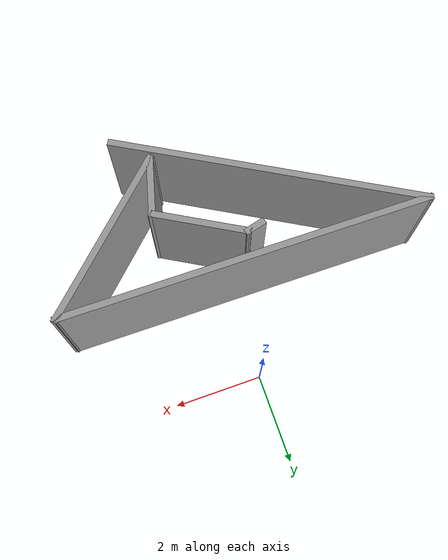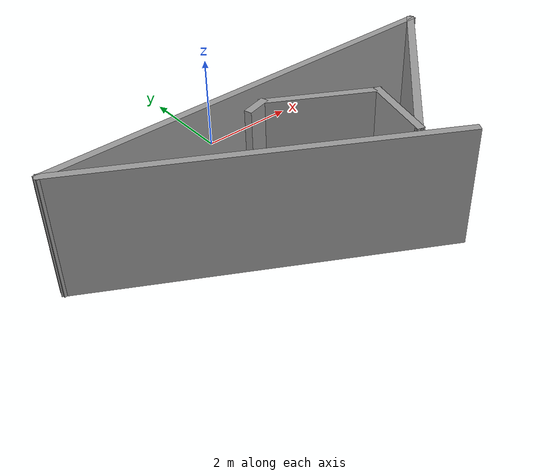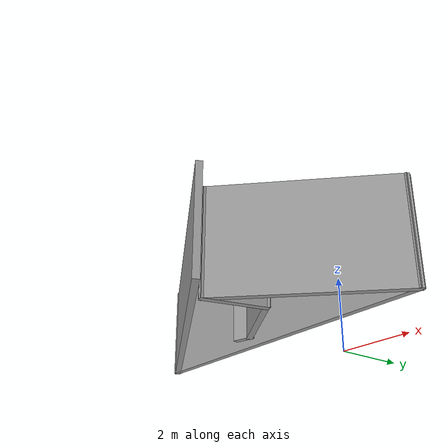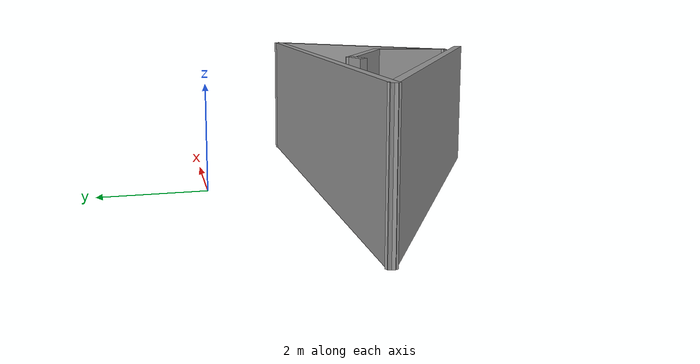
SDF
<?xml version='1.0'?>
<sdf version='1.6'>
  <model name='test'>
    <pose frame=''>-0.391974 -3.82319 0 0 -0 0</pose>
    <link name='Wall_0'>
      <collision name='Wall_0_Collision'>
        <geometry>
          <box>
            <size>7.25 0.15 2.5</size>
          </box>
        </geometry>
        <pose frame=''>0 0 1.25 0 -0 0</pose>
      </collision>
      <visual name='Wall_0_Visual'>
        <pose frame=''>0 0 1.25 0 -0 0</pose>
        <geometry>
          <box>
            <size>7.25 0.15 2.5</size>
          </box>
        </geometry>
        <material>
          <script>
            <uri>file://media/materials/scripts/gazebo.material</uri>
            <name>Gazebo/Grey</name>
          </script>
          <ambient>1 1 1 1</ambient>
        </material>
      </visual>
      <pose frame=''>-1.10242 -0.001807 0 0 -0 2.61799</pose>
    </link>
    <link name='Wall_1'>
      <collision name='Wall_1_Collision'>
        <geometry>
          <box>
            <size>8.5 0.15 2.5</size>
          </box>
        </geometry>
        <pose frame=''>0 0 1.25 0 -0 0</pose>
      </collision>
      <visual name='Wall_1_Visual'>
        <pose frame=''>0 0 1.25 0 -0 0</pose>
        <geometry>
          <box>
            <size>8.5 0.15 2.5</size>
          </box>
        </geometry>
        <material>
          <script>
            <uri>file://media/materials/scripts/gazebo.material</uri>
            <name>Gazebo/Grey</name>
          </script>
          <ambient>1 1 1 1</ambient>
        </material>
      </visual>
      <pose frame=''>-0.001807 1.77319 0 0 -0 0</pose>
    </link>
    <link name='Wall_2'>
      <collision name='Wall_2_Collision'>
        <geometry>
          <box>
            <size>4.25 0.15 2.5</size>
          </box>
        </geometry>
        <pose frame=''>0 0 1.25 0 -0 0</pose>
      </collision>
      <visual name='Wall_2_Visual'>
        <pose frame=''>0 0 1.25 0 -0 0</pose>
        <geometry>
          <box>
            <size>4.25 0.15 2.5</size>
          </box>
        </geometry>
        <material>
          <script>
            <uri>file://media/materials/scripts/gazebo.material</uri>
            <name>Gazebo/Grey</name>
          </script>
          <ambient>1 1 1 1</ambient>
        </material>
      </visual>
      <pose frame=''>2.72362 0.323624 0 0 0 -2.35619</pose>
    </link>
    <link name='Wall_3'>
      <collision name='Wall_3_Collision'>
        <geometry>
          <box>
            <size>1.5 0.15 2.5</size>
          </box>
        </geometry>
        <pose frame=''>0 0 1.25 0 -0 0</pose>
      </collision>
      <visual name='Wall_3_Visual'>
        <pose frame=''>0 0 1.25 0 -0 0</pose>
        <geometry>
          <box>
            <size>1.5 0.15 2.5</size>
          </box>
        </geometry>
        <material>
          <script>
            <uri>file://media/materials/scripts/gazebo.material</uri>
            <name>Gazebo/Grey</name>
          </script>
          <ambient>1 1 1 1</ambient>
        </material>
      </visual>
      <pose frame=''>1.44876 -0.473945 0 0 -0 1.309</pose>
    </link>
    <link name='Wall_4'>
      <collision name='Wall_4_Collision'>
        <geometry>
          <box>
            <size>2.25 0.15 2.5</size>
          </box>
        </geometry>
        <pose frame=''>0 0 1.25 0 -0 0</pose>
      </collision>
      <visual name='Wall_4_Visual'>
        <pose frame=''>0 0 1.25 0 -0 0</pose>
        <geometry>
          <box>
            <size>2.25 0.15 2.5</size>
          </box>
        </geometry>
        <material>
          <script>
            <uri>file://media/materials/scripts/gazebo.material</uri>
            <name>Gazebo/Grey</name>
          </script>
          <ambient>1 1 1 1</ambient>
        </material>
      </visual>
      <pose frame=''>0.714135 0.703055 0 0 -0 2.61799</pose>
    </link>
    <link name='Wall_5'>
      <collision name='Wall_5_Collision'>
        <geometry>
          <box>
            <size>0.5 0.15 2.5</size>
          </box>
        </geometry>
        <pose frame=''>0 0 1.25 0 -0 0</pose>
      </collision>
      <visual name='Wall_5_Visual'>
        <pose frame=''>0 0 1.25 0 -0 0</pose>
        <geometry>
          <box>
            <size>0.5 0.15 2.5</size>
          </box>
        </geometry>
        <material>
          <script>
            <uri>file://media/materials/scripts/gazebo.material</uri>
            <name>Gazebo/Grey</name>
          </script>
          <ambient>1 1 1 1</ambient>
        </material>
      </visual>
      <pose frame=''>-0.364229 1.18276 0 0 0 -2.87979</pose>
    </link>
    <static>1</static>
  </model>
</sdf>
